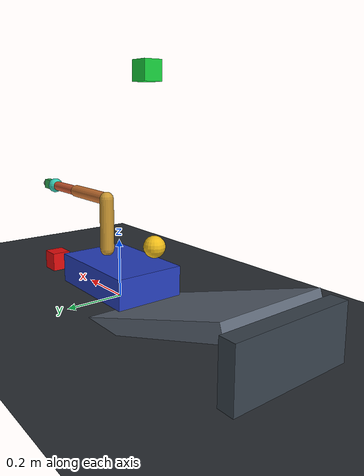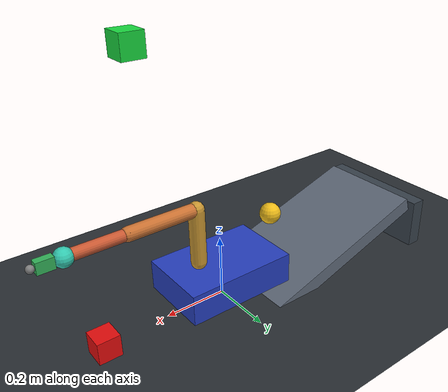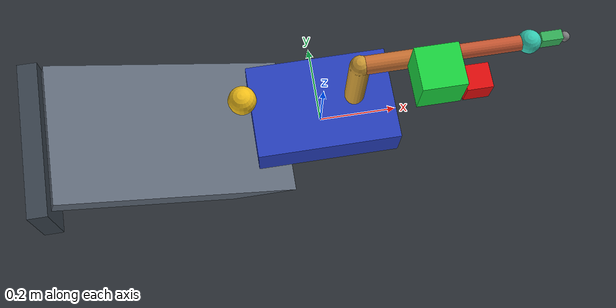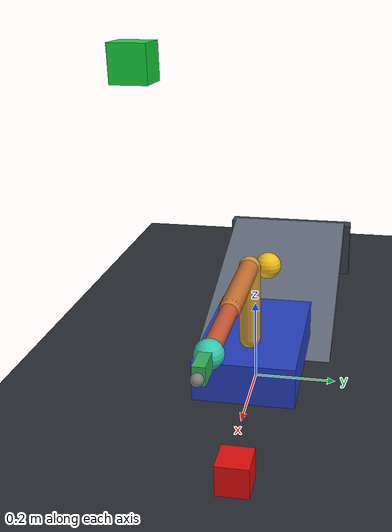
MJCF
<mujoco model="operator_mobile_manipulator_smoke">
  <compiler angle="degree"/>
  <option timestep="0.008333333" gravity="0 0 -9.81"/>
  <default>
    <joint damping="0.6" armature="0.01"/>
    <geom friction="1.0 0.01 0.001"/>
    <position kp="35"/>
  </default>
  <worldbody>
    <geom name="floor" type="plane" size="2 2 0.02" rgba="0.16 0.18 0.20 1"/>
    <body name="inclined_ramp" pos="-0.38 0 0.065" euler="0 18 0">
      <geom name="inclined_ramp_geom" type="box" size="0.32 0.18 0.025" friction="0.72 0.01 0.001" rgba="0.38 0.42 0.48 1"/>
    </body>
    <body name="stop_block" pos="-0.72 0 0.085">
      <geom name="stop_block_geom" type="box" size="0.025 0.20 0.085" friction="1.2 0.02 0.002" rgba="0.22 0.26 0.30 1"/>
    </body>
    <body name="falling_box" pos="0.14 -0.22 0.78">
      <freejoint name="falling_box_freejoint"/>
      <geom name="falling_box_geom" type="box" size="0.04 0.04 0.04" mass="0.16" friction="0.9 0.02 0.001" rgba="0.1 0.85 0.25 1"/>
    </body>
    <body name="ramp_ball" pos="-0.20 0 0.22">
      <freejoint name="ramp_ball_freejoint"/>
      <geom name="ramp_ball_geom" type="sphere" size="0.035" mass="0.08" friction="0.55 0.015 0.001" rgba="0.95 0.75 0.10 1"/>
    </body>
    <body name="mobile_base" pos="0 0 0.08">
      <joint name="base_x" type="slide" axis="1 0 0" limited="true" range="-1 1"/>
      <joint name="base_yaw" type="hinge" axis="0 0 1" limited="true" range="-3.14 3.14"/>
      <geom name="base_geom" type="box" size="0.18 0.12 0.05" rgba="0.15 0.25 0.75 1"/>
      <body name="shoulder" pos="0.08 0 0.07">
        <joint name="shoulder_pan" type="hinge" axis="0 0 1" limited="true" range="-1.57 1.57"/>
        <geom name="shoulder_geom" type="capsule" fromto="0 0 0 0.0 0 0.18" size="0.025" rgba="0.8 0.6 0.2 1"/>
        <body name="upper_arm" pos="0 0 0.18">
          <joint name="shoulder_lift" type="hinge" axis="0 1 0" limited="true" range="-1.2 1.2"/>
          <geom name="upper_arm_geom" type="capsule" fromto="0 0 0 0.22 0 0" size="0.022" rgba="0.8 0.45 0.2 1"/>
          <body name="forearm" pos="0.22 0 0">
            <joint name="elbow" type="hinge" axis="0 1 0" limited="true" range="-1.8 1.8"/>
            <geom name="forearm_geom" type="capsule" fromto="0 0 0 0.18 0 0" size="0.018" rgba="0.8 0.35 0.2 1"/>
            <body name="wrist" pos="0.18 0 0">
              <joint name="wrist_pitch" type="hinge" axis="0 1 0" limited="true" range="-1.57 1.57"/>
              <geom name="wrist_geom" type="sphere" size="0.028" rgba="0.2 0.8 0.7 1"/>
              <body name="gripper" pos="0.05 0 0">
                <joint name="gripper_open" type="slide" axis="0 1 0" limited="true" range="0 0.04"/>
                <geom name="gripper_palm" type="box" size="0.025 0.012 0.018" rgba="0.2 0.7 0.35 1"/>
                <site name="gripper_contact" pos="0.035 0 0" size="0.012"/>
              </body>
            </body>
          </body>
        </body>
      </body>
    </body>
    <body name="red_cube" pos="0.42 0.03 0.035">
      <freejoint name="red_cube_freejoint"/>
      <geom name="red_cube_geom" type="box" size="0.035 0.035 0.035" rgba="0.9 0.05 0.05 1"/>
    </body>
  </worldbody>
  <actuator>
    <position name="base_x_position" joint="base_x" ctrlrange="-1 1"/>
    <position name="base_yaw_position" joint="base_yaw" ctrlrange="-3.14 3.14"/>
    <position name="shoulder_pan_position" joint="shoulder_pan" ctrlrange="-1.57 1.57"/>
    <position name="shoulder_lift_position" joint="shoulder_lift" ctrlrange="-1.2 1.2"/>
    <position name="elbow_position" joint="elbow" ctrlrange="-1.8 1.8"/>
    <position name="wrist_pitch_position" joint="wrist_pitch" ctrlrange="-1.57 1.57"/>
    <position name="gripper_position" joint="gripper_open" ctrlrange="0 0.04"/>
  </actuator>
  <sensor>
    <jointpos name="base_x_pos" joint="base_x"/>
    <jointpos name="shoulder_pan_pos" joint="shoulder_pan"/>
    <jointpos name="elbow_pos" joint="elbow"/>
    <jointpos name="gripper_pos" joint="gripper_open"/>
    <touch name="gripper_touch" site="gripper_contact"/>
  </sensor>
</mujoco>
